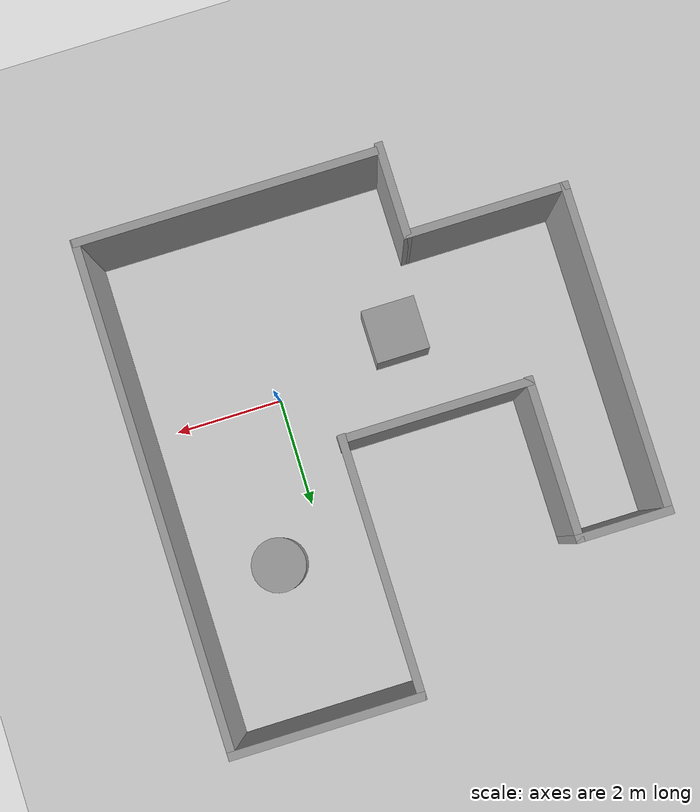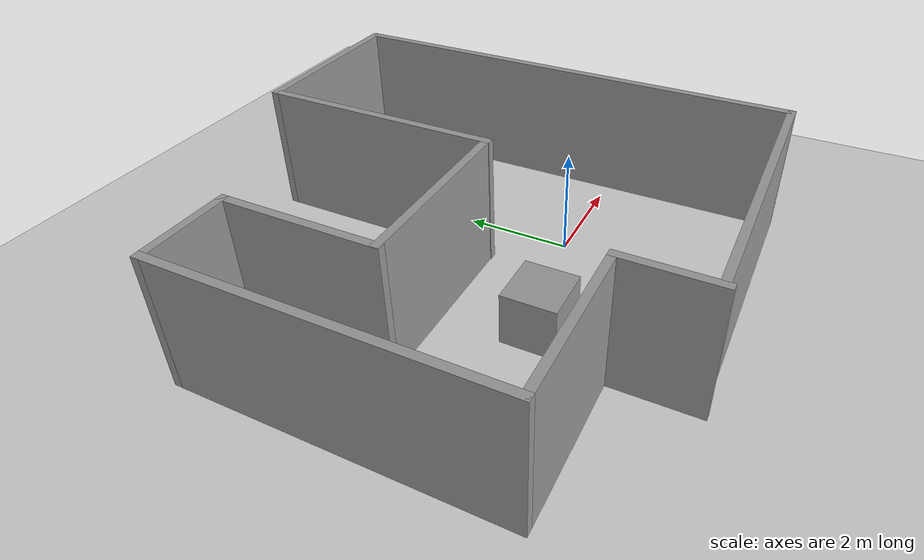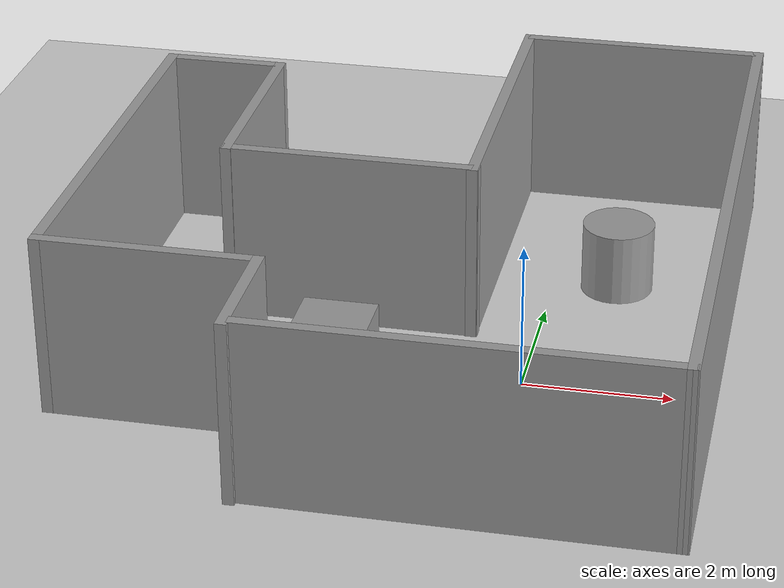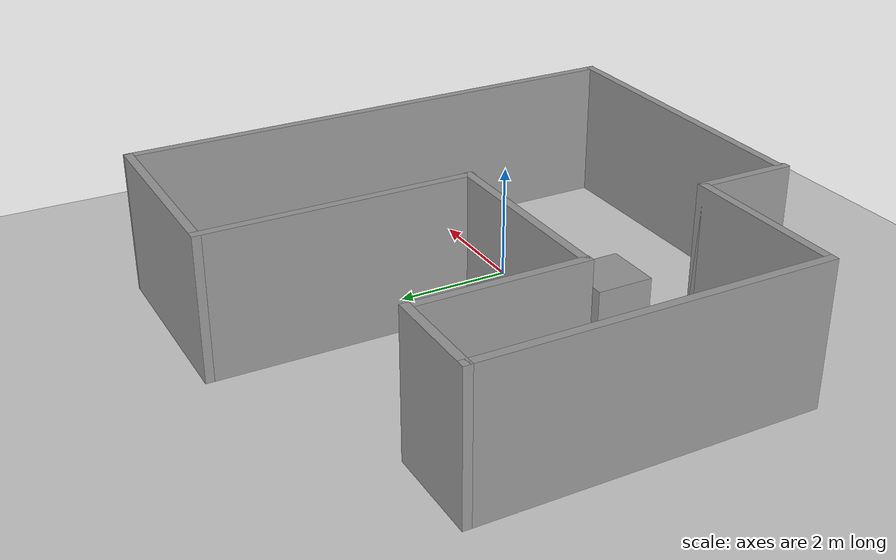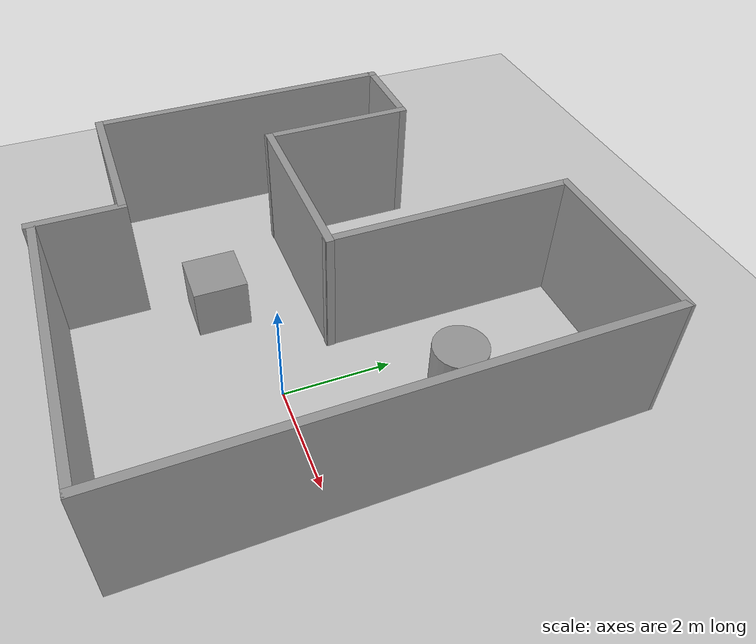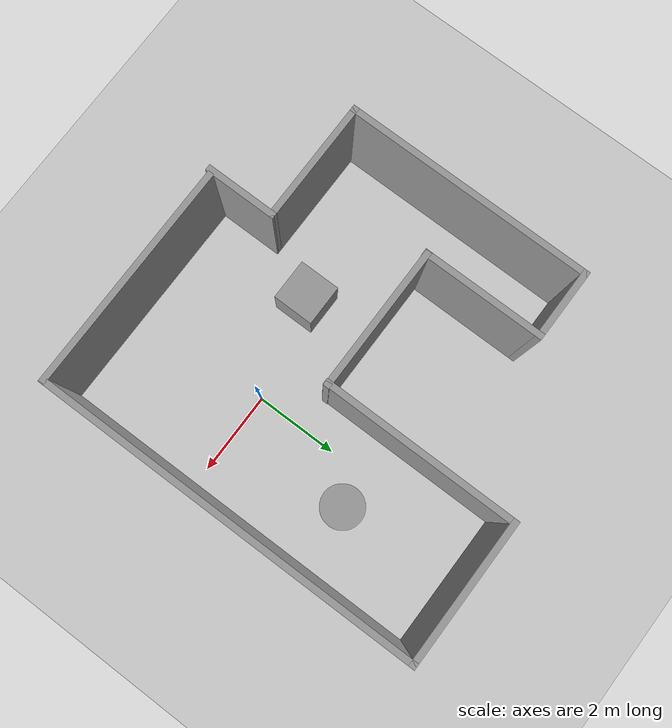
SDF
<sdf version="1.7">
 <world name="default">
  <light name="sun" type="directional">
   <pose>0 0 10 0 -0 0</pose>
   <diffuse>0.8 0.8 0.8 1</diffuse>
   <specular>0.2 0.2 0.2 1</specular>
   <attenuation>
    <range>1000</range>
    <constant>0.9</constant>
    <linear>0.01</linear>
    <quadratic>0.001</quadratic>
   </attenuation>
   <direction>-0.5 0.1 -0.9</direction>
   <spot><inner_angle>0</inner_angle><outer_angle>0</outer_angle><falloff>0</falloff></spot>
  </light>
  <model name="ground_plane">
   <static>1</static>
   <link name="link">
    <collision name="collision">
     <geometry><plane><normal>0 0 1</normal><size>100 100</size></plane></geometry>
     <surface>
      <contact><collide_bitmask>65535</collide_bitmask></contact>
      <friction><ode><mu>100</mu><mu2>50</mu2></ode></friction>
     </surface>
    </collision>
    <visual name="visual">
     <cast_shadows>0</cast_shadows>
     <geometry><plane><normal>0 0 1</normal><size>100 100</size></plane></geometry>
     <material>
      <script><uri>file://media/materials/scripts/gazebo.material</uri><name>Gazebo/Grey</name></script>
     </material>
    </visual>
   </link>
  </model>
  <gravity>0 0 -9.8</gravity>
  <magnetic_field>6e-06 2.3e-05 -4.2e-05</magnetic_field>
  <atmosphere type="adiabatic"/>
  <physics type="ode">
   <max_step_size>0.001</max_step_size>
   <real_time_factor>1</real_time_factor>
   <real_time_update_rate>1000</real_time_update_rate>
  </physics>
  <scene><ambient>0.4 0.4 0.4 1</ambient><background>0.7 0.7 0.7 1</background><shadows>1</shadows></scene>
  <audio><device>default</device></audio>
  <spherical_coordinates>
   <surface_model>EARTH_WGS84</surface_model>
   <latitude_deg>0</latitude_deg>
   <longitude_deg>0</longitude_deg>
   <elevation>0</elevation>
   <heading_deg>0</heading_deg>
  </spherical_coordinates>
  <model name="test_gazebo_map">
   <pose>-1.66984 1.15014 0 0 -0 0</pose>
   <link name="Wall_0">
    <collision name="Wall_0_Collision">
     <geometry><box><size>5.5 0.15 2.5</size></box></geometry>
     <pose>0 0 1.25 0 -0 0</pose>
    </collision>
    <visual name="Wall_0_Visual">
     <pose>0 0 1.25 0 -0 0</pose>
     <geometry><box><size>5.5 0.15 2.5</size></box></geometry>
     <material>
      <script><uri>file://media/materials/scripts/gazebo.material</uri><name>Gazebo/Grey</name></script>
      <ambient>1 1 1 1</ambient>
     </material>
     <meta><layer>0</layer></meta>
    </visual>
    <pose>1.47484 -4.54014 0 0 -0 0</pose>
   </link>
   <link name="Wall_1">
    <collision name="Wall_1_Collision">
     <geometry><box><size>9.29001 0.15 2.5</size></box></geometry>
     <pose>0 0 1.25 0 -0 0</pose>
    </collision>
    <visual name="Wall_1_Visual">
     <pose>0 0 1.25 0 -0 0</pose>
     <geometry><box><size>9.29001 0.15 2.5</size></box></geometry>
     <material>
      <script><uri>file://media/materials/scripts/gazebo.material</uri><name>Gazebo/Grey</name></script>
      <ambient>1 1 1 1</ambient>
     </material>
     <meta><layer>0</layer></meta>
    </visual>
    <pose>4.14984 0.029857 0 0 -0 1.57517</pose>
   </link>
   <link name="Wall_2">
    <collision name="Wall_2_Collision">
     <geometry><box><size>3.5 0.15 2.5</size></box></geometry>
     <pose>0 0 1.25 0 -0 0</pose>
    </collision>
    <visual name="Wall_2_Visual">
     <pose>0 0 1.25 0 -0 0</pose>
     <geometry><box><size>3.5 0.15 2.5</size></box></geometry>
     <material>
      <script><uri>file://media/materials/scripts/gazebo.material</uri><name>Gazebo/Grey</name></script>
      <ambient>1 1 1 1</ambient>
     </material>
     <meta><layer>0</layer></meta>
    </visual>
    <pose>2.45484 4.59986 0 0 -0 3.14159</pose>
   </link>
   <link name="Wall_3">
    <collision name="Wall_3_Collision">
     <geometry><box><size>4.71939 0.15 2.5</size></box></geometry>
     <pose>0 0 1.25 0 -0 0</pose>
    </collision>
    <visual name="Wall_3_Visual">
     <pose>0 0 1.25 0 -0 0</pose>
     <geometry><box><size>4.71939 0.15 2.5</size></box></geometry>
     <material>
      <script><uri>file://media/materials/scripts/gazebo.material</uri><name>Gazebo/Grey</name></script>
      <ambient>1 1 1 1</ambient>
     </material>
     <meta><layer>0</layer></meta>
    </visual>
    <pose>0.779836 2.31516 0 0 -0 -1.5708</pose>
   </link>
   <link name="Wall_4">
    <collision name="Wall_4_Collision">
     <geometry><box><size>3.5 0.15 2.5</size></box></geometry>
     <pose>0 0 1.25 0 -0 0</pose>
    </collision>
    <visual name="Wall_4_Visual">
     <pose>0 0 1.25 0 -0 0</pose>
     <geometry><box><size>3.5 0.15 2.5</size></box></geometry>
     <material>
      <script><uri>file://media/materials/scripts/gazebo.material</uri><name>Gazebo/Grey</name></script>
      <ambient>1 1 1 1</ambient>
     </material>
     <meta><layer>0</layer></meta>
    </visual>
    <pose>-0.881939 0.043693 0 0 -0 3.14159</pose>
   </link>
   <link name="Wall_5">
    <collision name="Wall_5_Collision">
     <geometry><box><size>2.96939 0.15 2.5</size></box></geometry>
     <pose>0 0 1.25 0 -0 0</pose>
    </collision>
    <visual name="Wall_5_Visual">
     <pose>0 0 1.25 0 -0 0</pose>
     <geometry><box><size>2.96939 0.15 2.5</size></box></geometry>
     <material>
      <script><uri>file://media/materials/scripts/gazebo.material</uri><name>Gazebo/Grey</name></script>
      <ambient>1 1 1 1</ambient>
     </material>
     <meta><layer>0</layer></meta>
    </visual>
    <pose>-2.57016 1.44016 0 0 -0 1.5708</pose>
   </link>
   <link name="Wall_6">
    <collision name="Wall_6_Collision">
     <geometry><box><size>1.75 0.15 2.5</size></box></geometry>
     <pose>0 0 1.25 0 -0 0</pose>
    </collision>
    <visual name="Wall_6_Visual">
     <pose>0 0 1.25 0 -0 0</pose>
     <geometry><box><size>1.75 0.15 2.5</size></box></geometry>
     <material>
      <script><uri>file://media/materials/scripts/gazebo.material</uri><name>Gazebo/Grey</name></script>
      <ambient>1 1 1 1</ambient>
     </material>
     <meta><layer>0</layer></meta>
    </visual>
    <pose>-3.37016 2.84986 0 0 -0 3.14159</pose>
   </link>
   <link name="Wall_7">
    <collision name="Wall_7_Collision">
     <geometry><box><size>6 0.15 2.5</size></box></geometry>
     <pose>0 0 1.25 0 -0 0</pose>
    </collision>
    <visual name="Wall_7_Visual">
     <pose>0 0 1.25 0 -0 0</pose>
     <geometry><box><size>6 0.15 2.5</size></box></geometry>
     <material>
      <script><uri>file://media/materials/scripts/gazebo.material</uri><name>Gazebo/Grey</name></script>
      <ambient>1 1 1 1</ambient>
     </material>
     <meta><layer>0</layer></meta>
    </visual>
    <pose>-4.17016 -0.075143 0 0 -0 -1.5708</pose>
   </link>
   <link name="Wall_8">
    <collision name="Wall_8_Collision">
     <geometry><box><size>3 0.15 2.5</size></box></geometry>
     <pose>0 0 1.25 0 -0 0</pose>
    </collision>
    <visual name="Wall_8_Visual">
     <pose>0 0 1.25 0 -0 0</pose>
     <geometry><box><size>3 0.15 2.5</size></box></geometry>
     <material>
      <script><uri>file://media/materials/scripts/gazebo.material</uri><name>Gazebo/Grey</name></script>
      <ambient>1 1 1 1</ambient>
     </material>
     <meta><layer>0</layer></meta>
    </visual>
    <pose>-2.74516 -3.00014 0 0 -0 0</pose>
   </link>
   <link name="Wall_9">
    <collision name="Wall_9_Collision">
     <geometry><box><size>1.75 0.15 2.5</size></box></geometry>
     <pose>0 0 1.25 0 -0 0</pose>
    </collision>
    <visual name="Wall_9_Visual">
     <pose>0 0 1.25 0 -0 0</pose>
     <geometry><box><size>1.75 0.15 2.5</size></box></geometry>
     <material>
      <script><uri>file://media/materials/scripts/gazebo.material</uri><name>Gazebo/Grey</name></script>
      <ambient>1 1 1 1</ambient>
     </material>
     <meta><layer>0</layer></meta>
    </visual>
    <pose>-1.32016 -3.80014 0 0 -0 -1.5708</pose>
   </link>
   <static>1</static>
  </model>
  <model name="unit_box">
   <pose>-2.39775 -0.530587 0.499995 -1e-05 -0 0</pose>
   <link name="link">
    <inertial>
     <mass>1</mass>
     <inertia>
      <ixx>0.166667</ixx>
      <ixy>0</ixy>
      <ixz>0</ixz>
      <iyy>0.166667</iyy>
      <iyz>0</iyz>
      <izz>0.166667</izz>
     </inertia>
    </inertial>
    <collision name="collision"><geometry><box><size>1 1 1</size></box></geometry></collision>
    <visual name="visual">
     <geometry><box><size>1 1 1</size></box></geometry>
     <material>
      <script><name>Gazebo/Grey</name><uri>file://media/materials/scripts/gazebo.material</uri></script>
     </material>
    </visual>
   </link>
  </model>
  <model name="unit_cylinder">
   <pose>0.863794 2.91263 0.499997 3e-06 4e-06 -0</pose>
   <link name="link">
    <inertial>
     <mass>1</mass>
     <inertia><ixx>0.145833</ixx><ixy>0</ixy><ixz>0</ixz><iyy>0.145833</iyy><iyz>0</iyz><izz>0.125</izz></inertia>
    </inertial>
    <collision name="collision">
     <geometry><cylinder><radius>0.5</radius><length>1</length></cylinder></geometry>
    </collision>
    <visual name="visual">
     <geometry><cylinder><radius>0.5</radius><length>1</length></cylinder></geometry>
     <material>
      <script><name>Gazebo/Grey</name><uri>file://media/materials/scripts/gazebo.material</uri></script>
     </material>
    </visual>
   </link>
  </model>
 </world>
</sdf>
